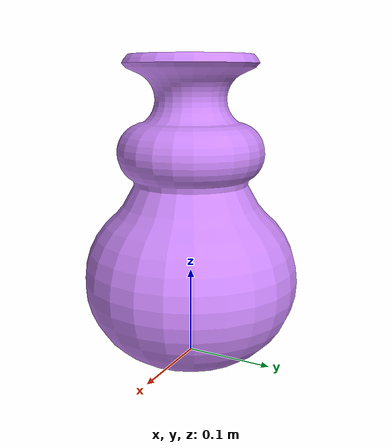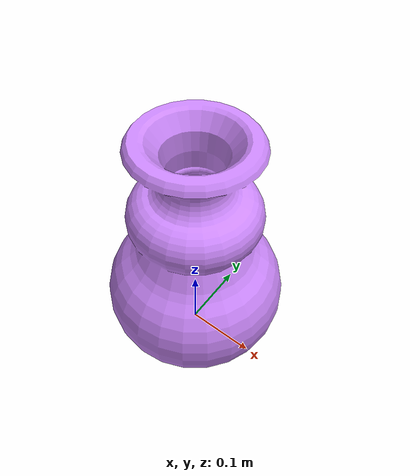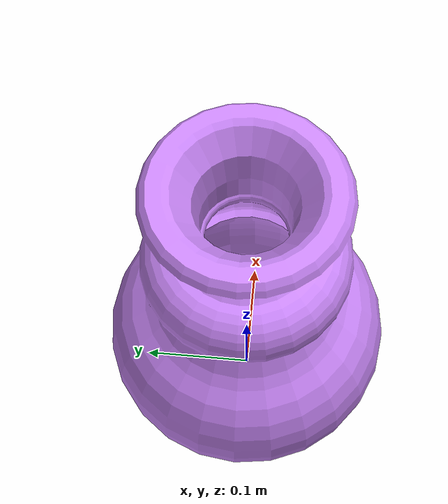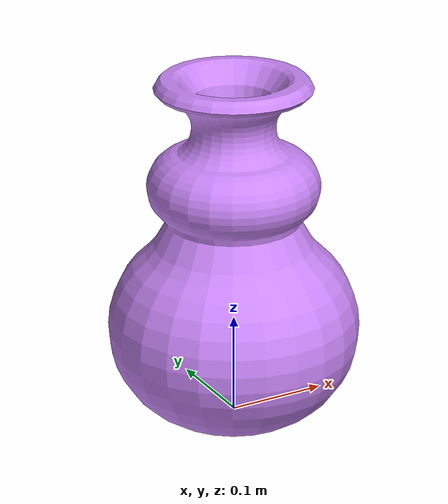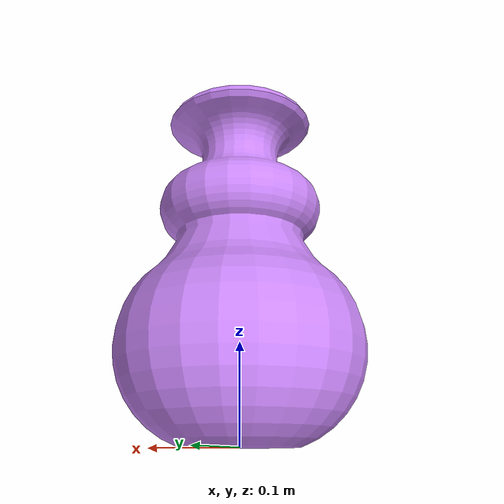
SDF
<?xml version='1.0'?>
<sdf version='1.6'>
  <model name='vase_violet'>
    <link name='link_34'>
      <pose frame=''>0 0 -0.149567 0 -0 0</pose>

      <visual name='visual'>
        <pose frame=''>0 0 0 0 -0 0</pose>
        <geometry>
          <mesh>
            <uri>model://vase_violet/meshes/vase5.dae</uri>
            <scale>1 1 1</scale>
          </mesh>
        </geometry>

        <material>
          <lighting>1</lighting>
          <ambient>0.788 0.525 0.972 1</ambient>
          <diffuse>0.788 0.525 0.972 1</diffuse>
          <specular>0.01 0.01 0.01 1</specular>
          <emissive>0 0 0 1</emissive>
          <shader type='vertex'>
            <normal_map>__default__</normal_map>
          </shader>
        </material>
        <cast_shadows>1</cast_shadows>
        <transparency>0</transparency>
      </visual>
      <collision name='collision'>
        <laser_retro>0</laser_retro>
        <max_contacts>10</max_contacts>
        <pose frame=''>0 0 0 0 -0 0</pose>
        <geometry>
          <mesh>
            <uri>model://vase_violet/meshes/vase5.dae</uri>
            <scale>1 1 1</scale>
          </mesh>
        </geometry>
       </collision>
    </link>
    <static>1</static>
    <allow_auto_disable>1</allow_auto_disable>
  </model>
</sdf>
